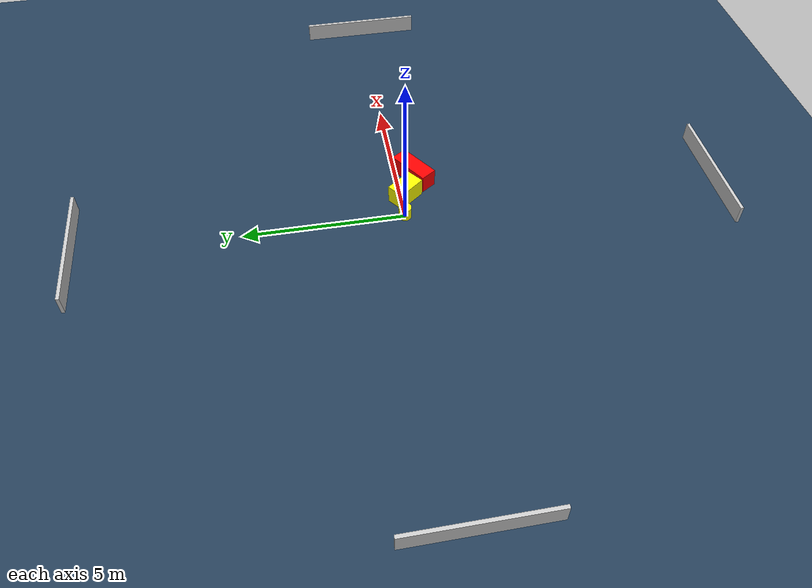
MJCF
<?xml version="1.0" ?>
<mujoco model="generated_environment">
  <option timestep="0.01" integrator="RK4" cone="elliptic"/>
  <default>
    <geom density="1"/>
  </default>
  <asset>
    <texture builtin="gradient" height="3072" name="skybox" rgb1="0.3 0.5 0.7" rgb2="0 0 0" type="skybox" width="512"/>
    <texture builtin="checker" height="300" name="groundplane" rgb1="0.2 0.3 0.4" rgb2="0.1 0.2 0.3" type="2d" width="300"/>
    <material name="groundplane" reflectance="0.2" texrepeat="5 5" texture="groundplane"/>
  </asset>
  <worldbody>
    <light dir="0 0 -1" directional="true" pos="0 0 1.5"/>
    <geom condim="3" friction="0.5 0.005 0.001" material="groundplane" name="floor" pos="0 0 0" size="0 0 0.05" type="plane"/>
    <body name="walls">
      <geom name="wall_1" condim="4" pos="-10.0 0.0 0.3" rgba="0.800000011920929 0.800000011920929 0.800000011920929 1.0" size="0.05 2.0 0.3" type="box"/>
      <geom name="wall_2" condim="4" pos="10.0 0.0 0.3" rgba="0.800000011920929 0.800000011920929 0.800000011920929 1.0" size="0.05 2.0 0.3" type="box"/>
      <geom name="wall_3" condim="4" pos="0.0 -10.0 0.3" rgba="0.800000011920929 0.800000011920929 0.800000011920929 1.0" size="2.0 0.05 0.3" type="box"/>
      <geom name="wall_4" condim="4" pos="0.0 10.0 0.3" rgba="0.800000011920929 0.800000011920929 0.800000011920929 1.0" size="2.0 0.05 0.3" type="box"/>
    </body>
    <body name="robot">
      <joint name="joint_x" type="slide" pos="0 0 0" axis="1 0 0"/>
      <joint name="joint_y" type="slide" pos="0 0 0" axis="0 1 0"/>
      <geom name="robot" type="cylinder" pos="0.0 0.0 0.2" size="0.2 0.2 0.0" mass="5.0" friction="1.0 0.005 0.0001" condim="4" rgba="1.0 1.0 0.0 1.0"/>
    </body>
    <body name="obstacle_1_movable">
      <geom name="obstacle_1_movable" condim="4" pos="0.8129102523151046 -0.15226941917182857 0.3" euler="0 0 127.53650666028615" friction="0.0 0.005 0.001" rgba="1.0 1.0 0.0 1.0" size="0.4700868452218162 0.28335509818221494 0.3" type="box" mass="0.1"/>
      <joint type="free"/>
    </body>
    <body name="obstacle_2_static">
      <geom name="obstacle_2_static" condim="4" pos="1.6587242462822174 -0.567790658406267 0.3" euler="0 0 304.1944371511623" friction="0.0 0.005 0.001" rgba="1.0 0.0 0.0 1.0" size="0.2672634400072937 0.685712553178682 0.3" type="box"/>
    </body>
  </worldbody>
  <actuator>
    <motor name="actuator_x" joint="joint_x" gear="1" ctrlrange="-1 1"/>
    <motor name="actuator_y" joint="joint_y" gear="1" ctrlrange="-1 1"/>
  </actuator>
</mujoco>
